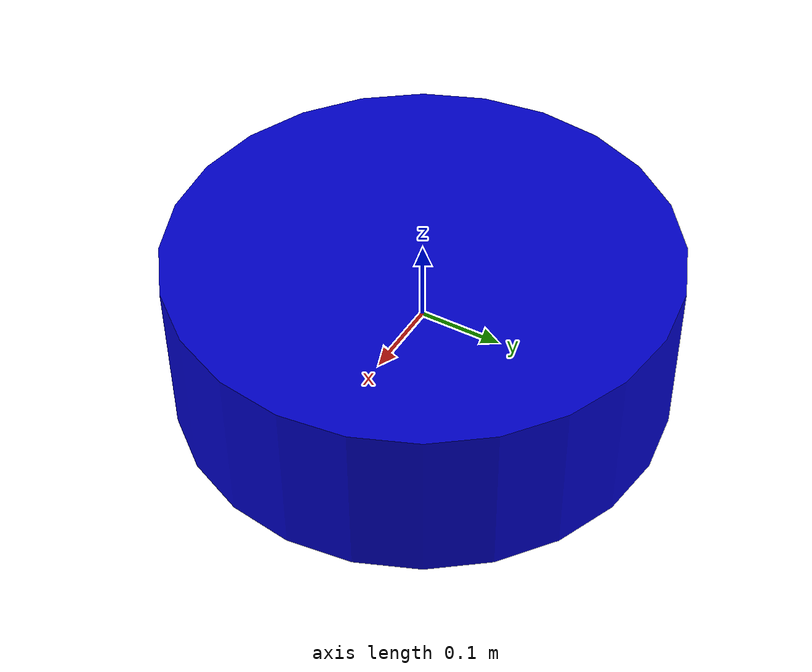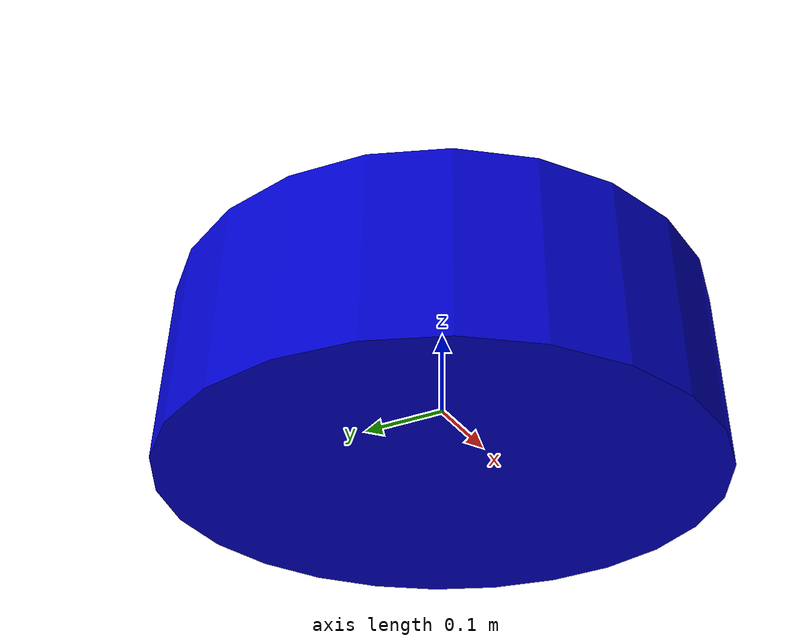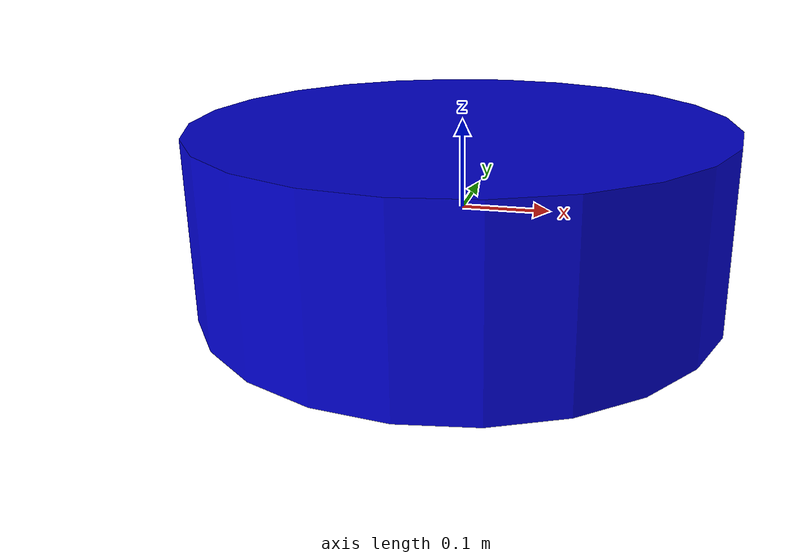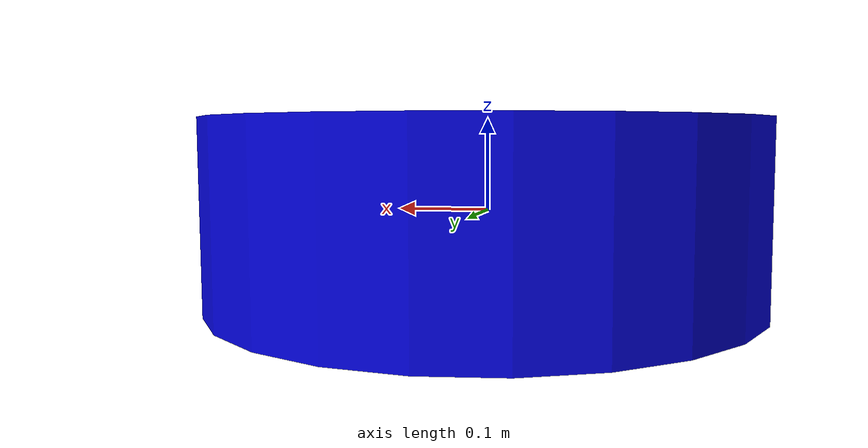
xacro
<?xml version="1.0"?>
<robot xmlns:xacro="http://www.ros.org/wiki/xacro" name="mobile_robot">

  <material name="blue"> <color rgba="0.0 0.0 0.8 1.0"/> </material>
  <material name="black"> <color rgba="0.0 0.0 0.0 1.0"/> </material>

  <link name="base_link">
    <visual>
      <geometry>
        <cylinder radius="0.3" length="0.2"/> </geometry>
      <material name="blue"/>
    </visual>
    <collision>
      <geometry>
        <cylinder radius="0.3" length="0.2"/>
      </geometry>
    </collision>
    <inertial>
      <mass value="5.0"/>
      <inertia ixx="0.1" ixy="0.0" ixz="0.0" iyy="0.1" iyz="0.0" izz="0.2"/>
    </inertial>
  </link>

  <gazebo>
    <plugin name="diff_drive" filename="libgazebo_ros_diff_drive.so">
      <ros>
        </ros>
      <left_joint>left_wheel_joint</left_joint> <right_joint>right_wheel_joint</right_joint>
      <wheel_separation>0.5</wheel_separation>
      <wheel_diameter>0.2</wheel_diameter>
      <max_wheel_torque>20</max_wheel_torque>
      <max_wheel_acceleration>1.0</max_wheel_acceleration>
      <command_topic>cmd_vel</command_topic>
      <odometry_topic>odom</odometry_topic>
      <odometry_frame>odom</odometry_frame>
      <robot_base_frame>base_link</robot_base_frame>
      <publish_odom>true</publish_odom>
      <publish_odom_tf>true</publish_odom_tf>
      <publish_wheel_tf>false</publish_wheel_tf>
    </plugin>
  </gazebo>
</robot>
